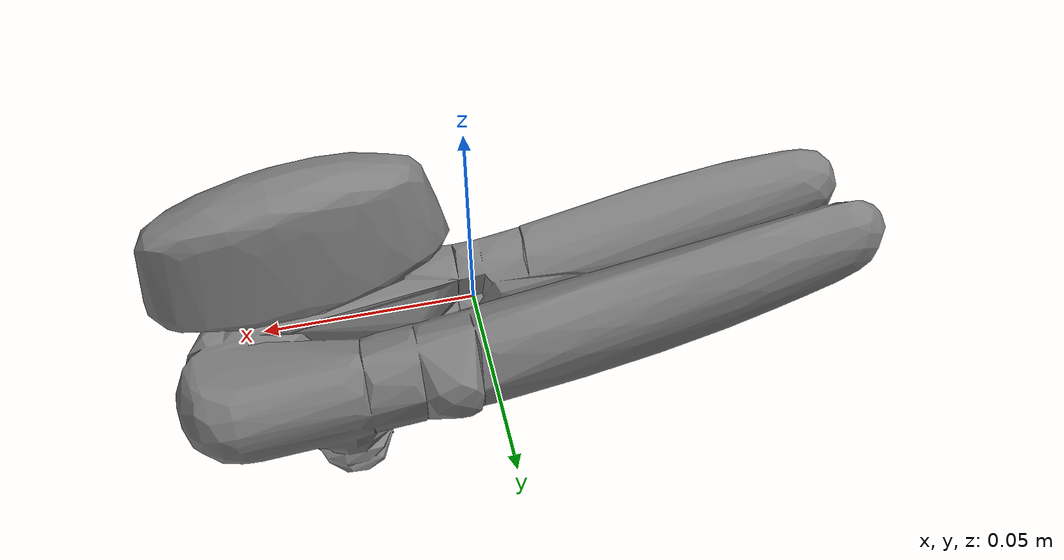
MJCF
<mujoco model="can_opener_OXO_Soft_Works_Can_Opener_SnapLock_M">
  <default>
    <default class="visual">
      <geom group="2" type="mesh" contype="0" conaffinity="0" />
    </default>
    <default class="collision">
      <geom group="3" type="mesh" />
    </default>
  </default>
  <asset>
    <mesh file="can_opener_OXO_Soft_Works_Can_Opener_SnapLock_M.stl" />
    <mesh file="can_opener_OXO_Soft_Works_Can_Opener_SnapLock_M_collision_0.stl" />
    <mesh file="can_opener_OXO_Soft_Works_Can_Opener_SnapLock_M_collision_1.stl" />
    <mesh file="can_opener_OXO_Soft_Works_Can_Opener_SnapLock_M_collision_2.stl" />
    <mesh file="can_opener_OXO_Soft_Works_Can_Opener_SnapLock_M_collision_3.stl" />
    <mesh file="can_opener_OXO_Soft_Works_Can_Opener_SnapLock_M_collision_4.stl" />
    <mesh file="can_opener_OXO_Soft_Works_Can_Opener_SnapLock_M_collision_5.stl" />
    <mesh file="can_opener_OXO_Soft_Works_Can_Opener_SnapLock_M_collision_6.stl" />
    <mesh file="can_opener_OXO_Soft_Works_Can_Opener_SnapLock_M_collision_7.stl" />
    <mesh file="can_opener_OXO_Soft_Works_Can_Opener_SnapLock_M_collision_8.stl" />
    <mesh file="can_opener_OXO_Soft_Works_Can_Opener_SnapLock_M_collision_9.stl" />
    <mesh file="can_opener_OXO_Soft_Works_Can_Opener_SnapLock_M_collision_10.stl" />
    <mesh file="can_opener_OXO_Soft_Works_Can_Opener_SnapLock_M_collision_11.stl" />
    <mesh file="can_opener_OXO_Soft_Works_Can_Opener_SnapLock_M_collision_12.stl" />
    <mesh file="can_opener_OXO_Soft_Works_Can_Opener_SnapLock_M_collision_13.stl" />
    <mesh file="can_opener_OXO_Soft_Works_Can_Opener_SnapLock_M_collision_14.stl" />
    <mesh file="can_opener_OXO_Soft_Works_Can_Opener_SnapLock_M_collision_15.stl" />
  </asset>
  <worldbody>
    <body name="can_opener_OXO_Soft_Works_Can_Opener_SnapLock_M">
      <geom mesh="can_opener_OXO_Soft_Works_Can_Opener_SnapLock_M" class="visual" />
      <geom mesh="can_opener_OXO_Soft_Works_Can_Opener_SnapLock_M_collision_0" class="collision" />
      <geom mesh="can_opener_OXO_Soft_Works_Can_Opener_SnapLock_M_collision_1" class="collision" />
      <geom mesh="can_opener_OXO_Soft_Works_Can_Opener_SnapLock_M_collision_2" class="collision" />
      <geom mesh="can_opener_OXO_Soft_Works_Can_Opener_SnapLock_M_collision_3" class="collision" />
      <geom mesh="can_opener_OXO_Soft_Works_Can_Opener_SnapLock_M_collision_4" class="collision" />
      <geom mesh="can_opener_OXO_Soft_Works_Can_Opener_SnapLock_M_collision_5" class="collision" />
      <geom mesh="can_opener_OXO_Soft_Works_Can_Opener_SnapLock_M_collision_6" class="collision" />
      <geom mesh="can_opener_OXO_Soft_Works_Can_Opener_SnapLock_M_collision_7" class="collision" />
      <geom mesh="can_opener_OXO_Soft_Works_Can_Opener_SnapLock_M_collision_8" class="collision" />
      <geom mesh="can_opener_OXO_Soft_Works_Can_Opener_SnapLock_M_collision_9" class="collision" />
      <geom mesh="can_opener_OXO_Soft_Works_Can_Opener_SnapLock_M_collision_10" class="collision" />
      <geom mesh="can_opener_OXO_Soft_Works_Can_Opener_SnapLock_M_collision_11" class="collision" />
      <geom mesh="can_opener_OXO_Soft_Works_Can_Opener_SnapLock_M_collision_12" class="collision" />
      <geom mesh="can_opener_OXO_Soft_Works_Can_Opener_SnapLock_M_collision_13" class="collision" />
      <geom mesh="can_opener_OXO_Soft_Works_Can_Opener_SnapLock_M_collision_14" class="collision" />
      <geom mesh="can_opener_OXO_Soft_Works_Can_Opener_SnapLock_M_collision_15" class="collision" />
    </body>
  </worldbody>
</mujoco>
